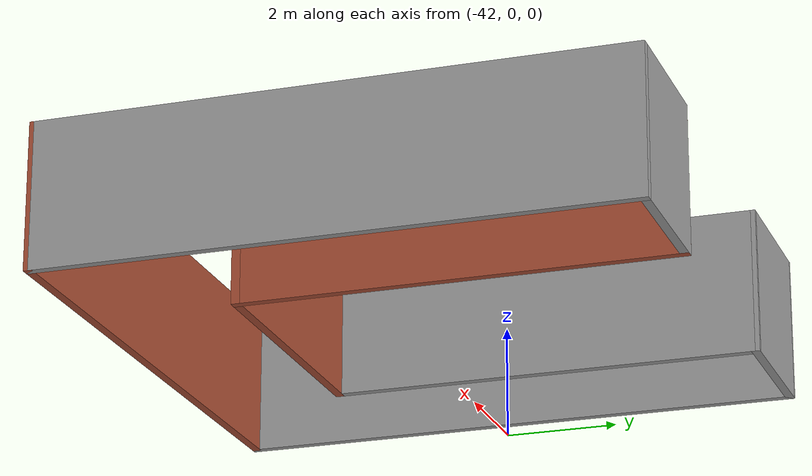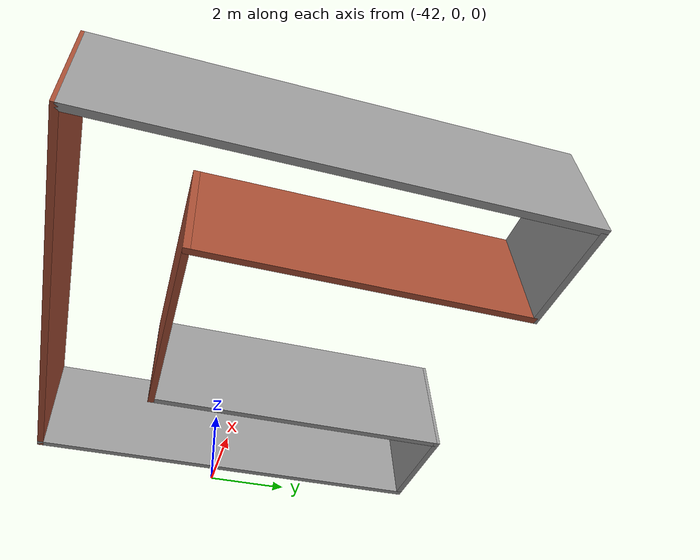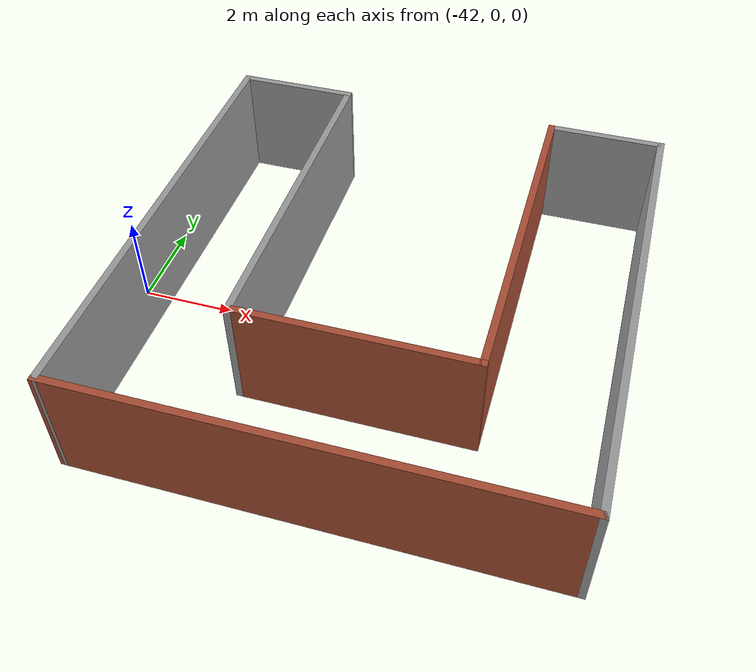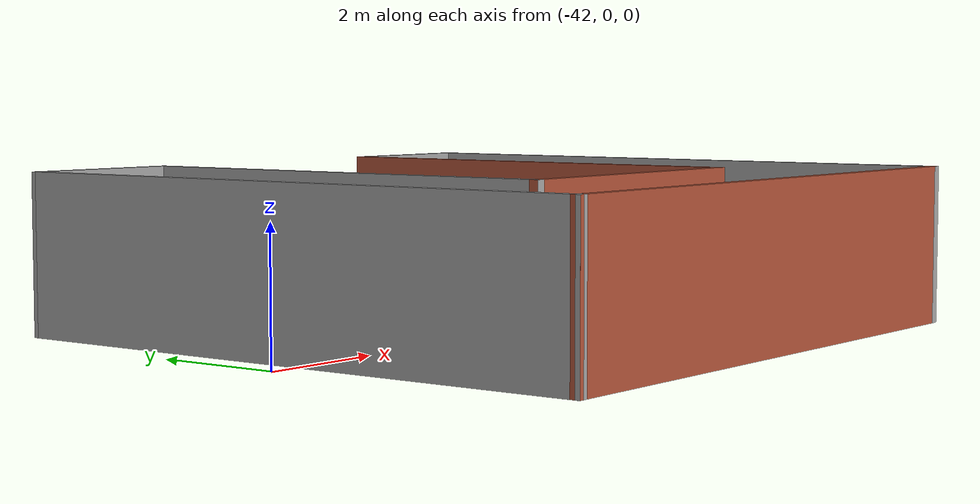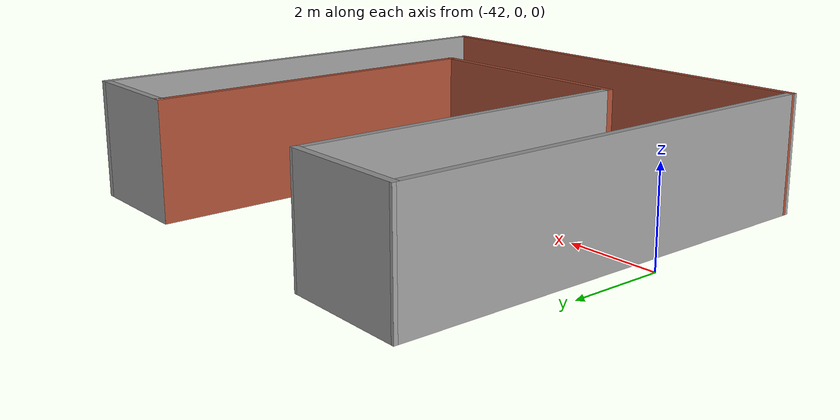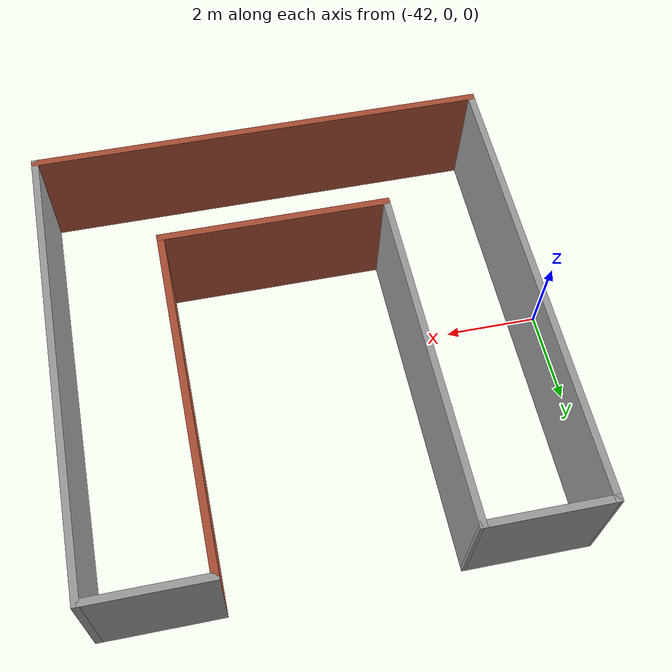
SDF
<?xml version='1.0'?>
<sdf version='1.6'>
  <model name='mybuilding'>
    <pose frame=''>-36.5346 0.331962 0 0 -0 0</pose>
    <link name='Wall_43'>
      <collision name='Wall_43_Collision'>
        <geometry>
          <box>
            <size>10 0.15 2.5</size>
          </box>
        </geometry>
        <pose frame=''>0 0 1.25 0 -0 0</pose>
      </collision>
      <visual name='Wall_43_Visual'>
        <pose frame=''>0 0 1.25 0 -0 0</pose>
        <geometry>
          <box>
            <size>10 0.15 2.5</size>
          </box>
        </geometry>
        <material>
          <script>
            <uri>file://media/materials/scripts/gazebo.material</uri>
            <name>Gazebo/Grey</name>
          </script>
          <ambient>1 1 1 1</ambient>
        </material>
        <meta>
          <layer>0</layer>
        </meta>
      </visual>
      <pose frame=''>-4.9204 3.8e-05 0 0 0 -1.57364</pose>
    </link>
    <link name='Wall_44'>
      <collision name='Wall_44_Collision'>
        <geometry>
          <box>
            <size>10 0.15 2.5</size>
          </box>
        </geometry>
        <pose frame=''>0 0 1.25 0 -0 0</pose>
      </collision>
      <visual name='Wall_44_Visual'>
        <pose frame=''>0 0 1.25 0 -0 0</pose>
        <geometry>
          <box>
            <size>10 0.15 2.5</size>
          </box>
        </geometry>
        <material>
          <script>
            <uri>file://media/materials/scripts/gazebo.material</uri>
            <name>Gazebo/Bricks</name>
          </script>
          <ambient>1 1 1 1</ambient>
        </material>
        <meta>
          <layer>0</layer>
        </meta>
      </visual>
      <pose frame=''>-0.009397 -4.92496 0 0 -0 0</pose>
    </link>
    <link name='Wall_45'>
      <collision name='Wall_45_Collision'>
        <geometry>
          <box>
            <size>9.99727 0.15 2.5</size>
          </box>
        </geometry>
        <pose frame=''>0 0 1.25 0 -0 0</pose>
      </collision>
      <visual name='Wall_45_Visual'>
        <pose frame=''>0 0 1.25 0 -0 0</pose>
        <geometry>
          <box>
            <size>9.99727 0.15 2.5</size>
          </box>
        </geometry>
        <material>
          <script>
            <uri>file://media/materials/scripts/gazebo.material</uri>
            <name>Gazebo/Grey</name>
          </script>
          <ambient>1 1 1 1</ambient>
        </material>
        <meta>
          <layer>0</layer>
        </meta>
      </visual>
      <pose frame=''>4.92504 -0.001462 0 0 -0 1.56888</pose>
    </link>
    <link name='Wall_46'>
      <collision name='Wall_46_Collision'>
        <geometry>
          <box>
            <size>2.49964 0.15 2.5</size>
          </box>
        </geometry>
        <pose frame=''>0 0 1.25 0 -0 0</pose>
      </collision>
      <visual name='Wall_46_Visual'>
        <pose frame=''>0 0 1.25 0 -0 0</pose>
        <geometry>
          <box>
            <size>2.49964 0.15 2.5</size>
          </box>
        </geometry>
        <material>
          <script>
            <uri>file://media/materials/scripts/gazebo.material</uri>
            <name>Gazebo/Grey</name>
          </script>
          <ambient>1 1 1 1</ambient>
        </material>
        <meta>
          <layer>0</layer>
        </meta>
      </visual>
      <pose frame=''>3.66785 4.92204 0 0 -0 3.14159</pose>
    </link>
    <link name='Wall_47'>
      <collision name='Wall_47_Collision'>
        <geometry>
          <box>
            <size>7.5 0.15 2.5</size>
          </box>
        </geometry>
        <pose frame=''>0 0 1.25 0 -0 0</pose>
      </collision>
      <visual name='Wall_47_Visual'>
        <pose frame=''>0 0 1.25 0 -0 0</pose>
        <geometry>
          <box>
            <size>7.5 0.15 2.5</size>
          </box>
        </geometry>
        <material>
          <script>
            <uri>file://media/materials/scripts/gazebo.material</uri>
            <name>Gazebo/Bricks</name>
          </script>
          <ambient>1 1 1 1</ambient>
        </material>
        <meta>
          <layer>0</layer>
        </meta>
      </visual>
      <pose frame=''>2.49285 1.24704 0 0 0 -1.5708</pose>
    </link>
    <link name='Wall_48'>
      <collision name='Wall_48_Collision'>
        <geometry>
          <box>
            <size>5 0.15 2.5</size>
          </box>
        </geometry>
        <pose frame=''>0 0 1.25 0 -0 0</pose>
      </collision>
      <visual name='Wall_48_Visual'>
        <pose frame=''>0 0 1.25 0 -0 0</pose>
        <geometry>
          <box>
            <size>5 0.15 2.5</size>
          </box>
        </geometry>
        <material>
          <script>
            <uri>file://media/materials/scripts/gazebo.material</uri>
            <name>Gazebo/Bricks</name>
          </script>
          <ambient>1 1 1 1</ambient>
        </material>
        <meta>
          <layer>0</layer>
        </meta>
      </visual>
      <pose frame=''>0.067847 -2.42796 0 0 -0 3.14159</pose>
    </link>
    <link name='Wall_49'>
      <collision name='Wall_49_Collision'>
        <geometry>
          <box>
            <size>7.5 0.15 2.5</size>
          </box>
        </geometry>
        <pose frame=''>0 0 1.25 0 -0 0</pose>
      </collision>
      <visual name='Wall_49_Visual'>
        <pose frame=''>0 0 1.25 0 -0 0</pose>
        <geometry>
          <box>
            <size>7.5 0.15 2.5</size>
          </box>
        </geometry>
        <material>
          <script>
            <uri>file://media/materials/scripts/gazebo.material</uri>
            <name>Gazebo/Grey</name>
          </script>
          <ambient>1 1 1 1</ambient>
        </material>
        <meta>
          <layer>0</layer>
        </meta>
      </visual>
      <pose frame=''>-2.35715 1.24704 0 0 -0 1.5708</pose>
    </link>
    <link name='Wall_50'>
      <collision name='Wall_50_Collision'>
        <geometry>
          <box>
            <size>2.69925 0.15 2.5</size>
          </box>
        </geometry>
        <pose frame=''>0 0 1.25 0 -0 0</pose>
      </collision>
      <visual name='Wall_50_Visual'>
        <pose frame=''>0 0 1.25 0 -0 0</pose>
        <geometry>
          <box>
            <size>2.69925 0.15 2.5</size>
          </box>
        </geometry>
        <material>
          <script>
            <uri>file://media/materials/scripts/gazebo.material</uri>
            <name>Gazebo/Grey</name>
          </script>
          <ambient>1 1 1 1</ambient>
        </material>
        <meta>
          <layer>0</layer>
        </meta>
      </visual>
      <pose frame=''>-3.63178 4.92354 0 0 -0 3.14042</pose>
    </link>
    <static>1</static>
  </model>
</sdf>
